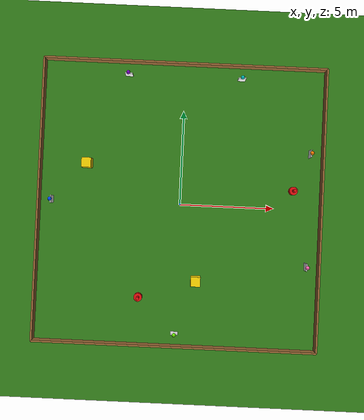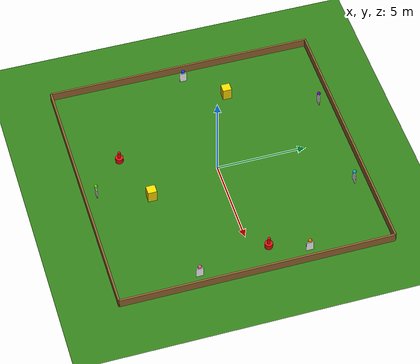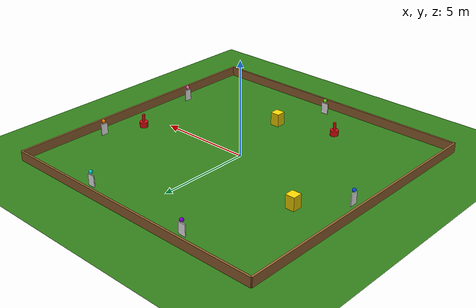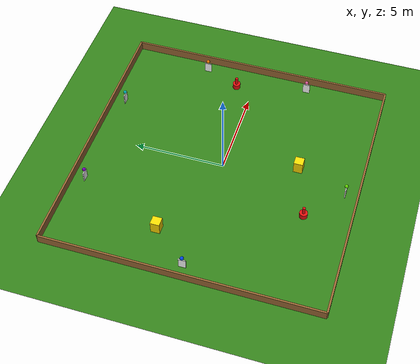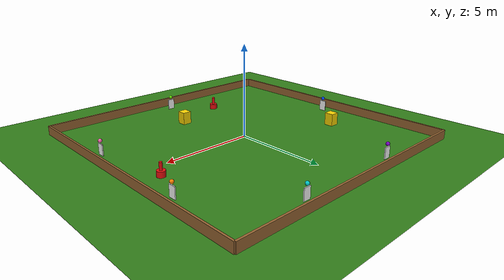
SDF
<?xml version="1.0" ?>
<sdf version="1.8">
  <world name="part3_world">

    <!-- ============================================================
         World plugins
    ============================================================ -->
    <physics name="1ms" type="ode">
      <max_step_size>0.001</max_step_size>
      <real_time_factor>1.0</real_time_factor>
    </physics>
    <plugin filename="libgz-sim-physics-system"
            name="gz::sim::systems::Physics"/>
    <plugin filename="libgz-sim-user-commands-system"
            name="gz::sim::systems::UserCommands"/>
    <plugin filename="libgz-sim-scene-broadcaster-system"
            name="gz::sim::systems::SceneBroadcaster"/>
    <plugin filename="libgz-sim-imu-system"
            name="gz::sim::systems::Imu"/>
    <plugin filename="libgz-sim-sensors-system.so"
            name="gz::sim::systems::Sensors"/>
    <plugin filename="libgz-sim-contact-system"
            name="gz::sim::systems::Contact"/>

    <!-- ============================================================
         Lighting
    ============================================================ -->
    <light type="directional" name="sun">
      <cast_shadows>true</cast_shadows>
      <pose>0 0 10 0 0 0</pose>
      <diffuse>0.8 0.8 0.8 1</diffuse>
      <specular>0.2 0.2 0.2 1</specular>
      <attenuation>
        <range>1000</range>
        <constant>0.9</constant>
        <linear>0.01</linear>
        <quadratic>0.001</quadratic>
      </attenuation>
      <direction>-0.5 0.1 -0.9</direction>
    </light>

    <!-- ============================================================
         Ground plane (grass colour)
    ============================================================ -->
    <model name="ground_plane">
      <static>true</static>
      <link name="link">
        <collision name="collision">
          <geometry><plane><normal>0 0 1</normal></plane></geometry>
        </collision>
        <visual name="visual">
          <geometry>
            <plane><normal>0 0 1</normal><size>50 50</size></plane>
          </geometry>
          <material>
            <ambient>0.2 0.5 0.1 1</ambient>
            <diffuse>0.2 0.5 0.1 1</diffuse>
          </material>
        </visual>
      </link>
    </model>

    <!-- North wall  y = +7.5 -->
    <model name="wall_north">
      <static>true</static>
      <pose>0 7.5 0.25 0 0 0</pose>
      <link name="link">
        <collision name="c"><geometry><box><size>15 0.1 0.5</size></box></geometry></collision>
        <visual name="v">
          <geometry><box><size>15 0.1 0.5</size></box></geometry>
          <material><ambient>0.6 0.4 0.2 1</ambient><diffuse>0.6 0.4 0.2 1</diffuse></material>
        </visual>
      </link>
    </model>

    <!-- South wall  y = -7.5 -->
    <model name="wall_south">
      <static>true</static>
      <pose>0 -7.5 0.25 0 0 0</pose>
      <link name="link">
        <collision name="c"><geometry><box><size>15 0.1 0.5</size></box></geometry></collision>
        <visual name="v">
          <geometry><box><size>15 0.1 0.5</size></box></geometry>
          <material><ambient>0.6 0.4 0.2 1</ambient><diffuse>0.6 0.4 0.2 1</diffuse></material>
        </visual>
      </link>
    </model>

    <!-- East wall  x = +7.5 -->
    <model name="wall_east">
      <static>true</static>
      <pose>7.5 0 0.25 0 0 0</pose>
      <link name="link">
        <collision name="c"><geometry><box><size>0.1 15 0.5</size></box></geometry></collision>
        <visual name="v">
          <geometry><box><size>0.1 15 0.5</size></box></geometry>
          <material><ambient>0.6 0.4 0.2 1</ambient><diffuse>0.6 0.4 0.2 1</diffuse></material>
        </visual>
      </link>
    </model>

    <!-- West wall  x = -7.5 -->
    <model name="wall_west">
      <static>true</static>
      <pose>-7.5 0 0.25 0 0 0</pose>
      <link name="link">
        <collision name="c"><geometry><box><size>0.1 15 0.5</size></box></geometry></collision>
        <visual name="v">
          <geometry><box><size>0.1 15 0.5</size></box></geometry>
          <material><ambient>0.6 0.4 0.2 1</ambient><diffuse>0.6 0.4 0.2 1</diffuse></material>
        </visual>
      </link>
    </model>

    <!-- ALPHA – north wall, left  (-3, 6.8)   marker: purple -->
    <model name="board_alpha">
      <static>true</static>
      <pose>-3 6.8 0 0 0 0</pose>
      <link name="panel">
        <pose>0 0 0.3 0 0 0</pose>
        <collision name="c"><geometry><box><size>0.4 0.05 0.6</size></box></geometry></collision>
        <visual name="v">
          <geometry><box><size>0.4 0.05 0.6</size></box></geometry>
          <material><ambient>1 1 1 1</ambient><diffuse>1 1 1 1</diffuse></material>
        </visual>
      </link>
      <link name="marker">
        <pose>0 0 0.75 0 0 0</pose>
        <visual name="v">
          <geometry><sphere><radius>0.1</radius></sphere></geometry>
          <material><ambient>0.5 0 0.8 1</ambient><diffuse>0.5 0 0.8 1</diffuse></material>
        </visual>
      </link>
    </model>

    <!-- BETA – north wall, right  (+3, 6.8)   marker: cyan -->
    <model name="board_beta">
      <static>true</static>
      <pose>3 6.8 0 0 0 0</pose>
      <link name="panel">
        <pose>0 0 0.3 0 0 0</pose>
        <collision name="c"><geometry><box><size>0.4 0.05 0.6</size></box></geometry></collision>
        <visual name="v">
          <geometry><box><size>0.4 0.05 0.6</size></box></geometry>
          <material><ambient>1 1 1 1</ambient><diffuse>1 1 1 1</diffuse></material>
        </visual>
      </link>
      <link name="marker">
        <pose>0 0 0.75 0 0 0</pose>
        <visual name="v">
          <geometry><sphere><radius>0.1</radius></sphere></geometry>
          <material><ambient>0 0.8 0.8 1</ambient><diffuse>0 0.8 0.8 1</diffuse></material>
        </visual>
      </link>
    </model>

    <!-- GAMMA – east wall, upper  (+6.8, +3)  marker: orange  (yaw 90° so face points west/inward) -->
    <model name="board_gamma">
      <static>true</static>
      <pose>6.8 3 0 0 0 1.5708</pose>
      <link name="panel">
        <pose>0 0 0.3 0 0 0</pose>
        <collision name="c"><geometry><box><size>0.4 0.05 0.6</size></box></geometry></collision>
        <visual name="v">
          <geometry><box><size>0.4 0.05 0.6</size></box></geometry>
          <material><ambient>1 1 1 1</ambient><diffuse>1 1 1 1</diffuse></material>
        </visual>
      </link>
      <link name="marker">
        <pose>0 0 0.75 0 0 0</pose>
        <visual name="v">
          <geometry><sphere><radius>0.1</radius></sphere></geometry>
          <material><ambient>1 0.5 0 1</ambient><diffuse>1 0.5 0 1</diffuse></material>
        </visual>
      </link>
    </model>

    <!-- DELTA – east wall, lower  (+6.8, -3)  marker: pink  (yaw 90°) -->
    <model name="board_delta">
      <static>true</static>
      <pose>6.8 -3 0 0 0 1.5708</pose>
      <link name="panel">
        <pose>0 0 0.3 0 0 0</pose>
        <collision name="c"><geometry><box><size>0.4 0.05 0.6</size></box></geometry></collision>
        <visual name="v">
          <geometry><box><size>0.4 0.05 0.6</size></box></geometry>
          <material><ambient>1 1 1 1</ambient><diffuse>1 1 1 1</diffuse></material>
        </visual>
      </link>
      <link name="marker">
        <pose>0 0 0.75 0 0 0</pose>
        <visual name="v">
          <geometry><sphere><radius>0.1</radius></sphere></geometry>
          <material><ambient>1 0.4 0.7 1</ambient><diffuse>1 0.4 0.7 1</diffuse></material>
        </visual>
      </link>
    </model>

    <!-- EPSILON – south wall, centre  (0, -6.8)  marker: lime -->
    <model name="board_epsilon">
      <static>true</static>
      <pose>0 -6.8 0 0 0 0</pose>
      <link name="panel">
        <pose>0 0 0.3 0 0 0</pose>
        <collision name="c"><geometry><box><size>0.4 0.05 0.6</size></box></geometry></collision>
        <visual name="v">
          <geometry><box><size>0.4 0.05 0.6</size></box></geometry>
          <material><ambient>1 1 1 1</ambient><diffuse>1 1 1 1</diffuse></material>
        </visual>
      </link>
      <link name="marker">
        <pose>0 0 0.75 0 0 0</pose>
        <visual name="v">
          <geometry><sphere><radius>0.1</radius></sphere></geometry>
          <material><ambient>0.4 0.9 0 1</ambient><diffuse>0.4 0.9 0 1</diffuse></material>
        </visual>
      </link>
    </model>

    <!-- ZETA – west wall, centre  (-6.8, 0)  marker: blue  (yaw 90°) -->
    <model name="board_zeta">
      <static>true</static>
      <pose>-6.8 0 0 0 0 1.5708</pose>
      <link name="panel">
        <pose>0 0 0.3 0 0 0</pose>
        <collision name="c"><geometry><box><size>0.4 0.05 0.6</size></box></geometry></collision>
        <visual name="v">
          <geometry><box><size>0.4 0.05 0.6</size></box></geometry>
          <material><ambient>1 1 1 1</ambient><diffuse>1 1 1 1</diffuse></material>
        </visual>
      </link>
      <link name="marker">
        <pose>0 0 0.75 0 0 0</pose>
        <visual name="v">
          <geometry><sphere><radius>0.1</radius></sphere></geometry>
          <material><ambient>0 0.3 1 1</ambient><diffuse>0 0.3 1 1</diffuse></material>
        </visual>
      </link>
    </model>

    <model name="yellow_block_1">
      <static>true</static>
      <pose>1 -4 0.35 0 0 0</pose>
      <link name="link">
        <collision name="c"><geometry><box><size>0.5 0.5 0.7</size></box></geometry></collision>
        <visual name="v">
          <geometry><box><size>0.5 0.5 0.7</size></box></geometry>
          <material>
            <ambient>1.0 0.85 0.0 1</ambient>
            <diffuse>1.0 0.85 0.0 1</diffuse>
            <specular>0.3 0.3 0.0 1</specular>
          </material>
        </visual>
      </link>
    </model>

    <model name="yellow_block_2">
      <static>true</static>
      <pose>-5 2 0.35 0 0 0</pose>
      <link name="link">
        <collision name="c"><geometry><box><size>0.5 0.5 0.7</size></box></geometry></collision>
        <visual name="v">
          <geometry><box><size>0.5 0.5 0.7</size></box></geometry>
          <material>
            <ambient>1.0 0.85 0.0 1</ambient>
            <diffuse>1.0 0.85 0.0 1</diffuse>
            <specular>0.3 0.3 0.0 1</specular>
          </material>
        </visual>
      </link>
    </model>

    <model name="red_cone_1">
      <static>true</static>
      <pose>6 1 0 0 0 0</pose>
      <link name="base">
        <pose>0 0 0.15 0 0 0</pose>
        <collision name="c"><geometry><cylinder><radius>0.22</radius><length>0.3</length></cylinder></geometry></collision>
        <visual name="v">
          <geometry><cylinder><radius>0.22</radius><length>0.3</length></cylinder></geometry>
          <material><ambient>0.9 0.05 0.05 1</ambient><diffuse>0.9 0.05 0.05 1</diffuse></material>
        </visual>
      </link>
      <link name="top">
        <pose>0 0 0.5 0 0 0</pose>
        <collision name="c"><geometry><cylinder><radius>0.08</radius><length>0.4</length></cylinder></geometry></collision>
        <visual name="v">
          <geometry><cylinder><radius>0.08</radius><length>0.4</length></cylinder></geometry>
          <material><ambient>0.9 0.05 0.05 1</ambient><diffuse>0.9 0.05 0.05 1</diffuse></material>
        </visual>
      </link>
    </model>

    <model name="red_cone_2">
      <static>true</static>
      <pose>-2 -5 0 0 0 0</pose>
      <link name="base">
        <pose>0 0 0.15 0 0 0</pose>
        <collision name="c"><geometry><cylinder><radius>0.22</radius><length>0.3</length></cylinder></geometry></collision>
        <visual name="v">
          <geometry><cylinder><radius>0.22</radius><length>0.3</length></cylinder></geometry>
          <material><ambient>0.9 0.05 0.05 1</ambient><diffuse>0.9 0.05 0.05 1</diffuse></material>
        </visual>
      </link>
      <link name="top">
        <pose>0 0 0.5 0 0 0</pose>
        <collision name="c"><geometry><cylinder><radius>0.08</radius><length>0.4</length></cylinder></geometry></collision>
        <visual name="v">
          <geometry><cylinder><radius>0.08</radius><length>0.4</length></cylinder></geometry>
          <material><ambient>0.9 0.05 0.05 1</ambient><diffuse>0.9 0.05 0.05 1</diffuse></material>
        </visual>
      </link>
    </model>

  </world>
</sdf>
